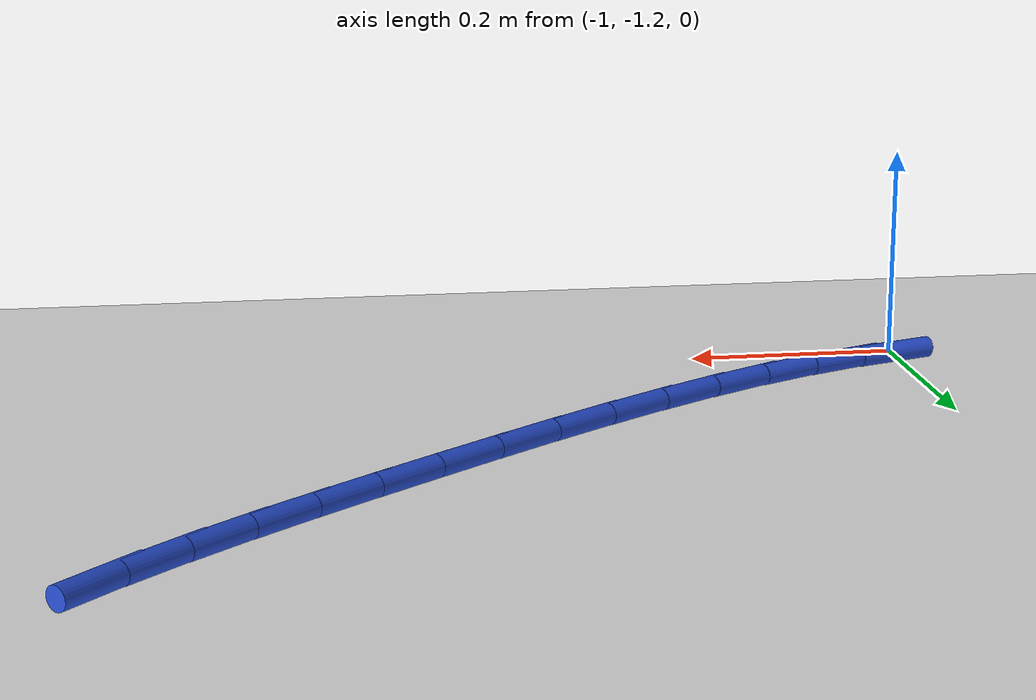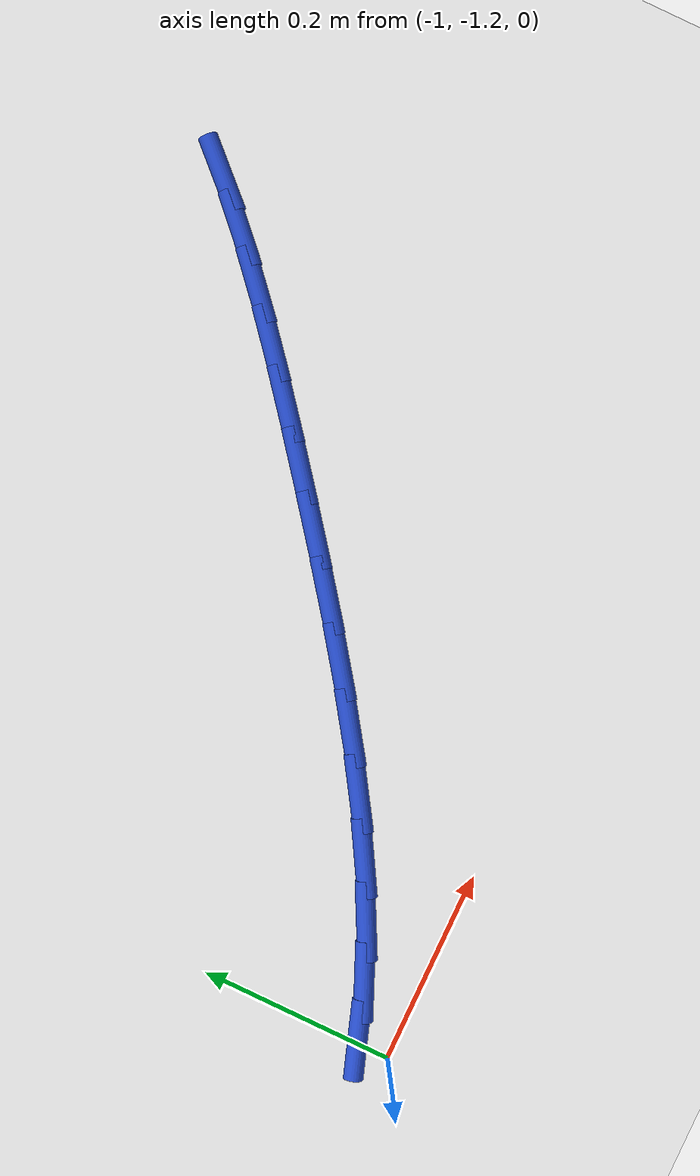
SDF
<sdf version="1.6">
 <world name="default">
  <model name="ground_plane">
   <static>1</static>
   <link name="link">
    <collision name="collision">
     <geometry><plane><normal>0 0 1</normal><size>100 100</size></plane></geometry>
     <surface><friction><ode><mu>100</mu><mu2>50</mu2></ode></friction></surface>
    </collision>
    <visual name="visual">
     <cast_shadows>0</cast_shadows>
     <geometry><plane><normal>0 0 1</normal><size>100 100</size></plane></geometry>
     <material>
      <script><uri>file://media/materials/scripts/gazebo.material</uri><name>Gazebo/WhiteGlow</name></script>
     </material>
    </visual>
   </link>
  </model>
  <model name="line">
   <link name="link_93">
    <pose>-0.9926756406002183 -1.1636423953339214 0.01 0 1.57 0.328688068036735</pose>
    <collision name="collision">
     <geometry><cylinder><radius>0.01</radius><length>0.08</length></cylinder></geometry>
    </collision>
    <visual name="visual">
     <material>
      <script><name>Gazebo/Blue</name><uri>file://media/materials/scripts/gazebo.material</uri></script>
     </material>
     <geometry><cylinder><radius>0.01</radius><length>0.08</length></cylinder></geometry>
    </visual>
   </link>
   <link name="link_94">
    <pose>-0.9381679822524729 -1.14505203120336 0.01 0 1.57 0.40941184323973084</pose>
    <collision name="collision">
     <geometry><cylinder><radius>0.01</radius><length>0.08</length></cylinder></geometry>
    </collision>
    <visual name="visual">
     <material>
      <script><name>Gazebo/Blue</name><uri>file://media/materials/scripts/gazebo.material</uri></script>
     </material>
     <geometry><cylinder><radius>0.01</radius><length>0.08</length></cylinder></geometry>
    </visual>
   </link>
   <link name="link_95">
    <pose>-0.8830698817209338 -1.121143195569204 0.01 0 1.57 0.47447050917708256</pose>
    <collision name="collision">
     <geometry><cylinder><radius>0.01</radius><length>0.08</length></cylinder></geometry>
    </collision>
    <visual name="visual">
     <material>
      <script><name>Gazebo/Blue</name><uri>file://media/materials/scripts/gazebo.material</uri></script>
     </material>
     <geometry><cylinder><radius>0.01</radius><length>0.08</length></cylinder></geometry>
    </visual>
   </link>
   <link name="link_96">
    <pose>-0.8276642211169561 -1.0926866949733112 0.01 0 1.57 0.5267138014611966</pose>
    <collision name="collision">
     <geometry><cylinder><radius>0.01</radius><length>0.08</length></cylinder></geometry>
    </collision>
    <visual name="visual">
     <material>
      <script><name>Gazebo/Blue</name><uri>file://media/materials/scripts/gazebo.material</uri></script>
     </material>
     <geometry><cylinder><radius>0.01</radius><length>0.08</length></cylinder></geometry>
    </visual>
   </link>
   <link name="link_97">
    <pose>-0.7722338825518966 -1.060453335957543 0.01 0 1.57 0.5684028689804026</pose>
    <collision name="collision">
     <geometry><cylinder><radius>0.01</radius><length>0.08</length></cylinder></geometry>
    </collision>
    <visual name="visual">
     <material>
      <script><name>Gazebo/Blue</name><uri>file://media/materials/scripts/gazebo.material</uri></script>
     </material>
     <geometry><cylinder><radius>0.01</radius><length>0.08</length></cylinder></geometry>
    </visual>
   </link>
   <link name="link_98">
    <pose>-0.7170617481371103 -1.0252139250637586 0.01 0 1.57 0.6012401482221396</pose>
    <collision name="collision">
     <geometry><cylinder><radius>0.01</radius><length>0.08</length></cylinder></geometry>
    </collision>
    <visual name="visual">
     <material>
      <script><name>Gazebo/Blue</name><uri>file://media/materials/scripts/gazebo.material</uri></script>
     </material>
     <geometry><cylinder><radius>0.01</radius><length>0.08</length></cylinder></geometry>
    </visual>
   </link>
   <link name="link_99">
    <pose>-0.6624306999839521 -0.9877392688338176 0.01 0 1.57 0.6264422781295648</pose>
    <collision name="collision">
     <geometry><cylinder><radius>0.01</radius><length>0.08</length></cylinder></geometry>
    </collision>
    <visual name="visual">
     <material>
      <script><name>Gazebo/Blue</name><uri>file://media/materials/scripts/gazebo.material</uri></script>
     </material>
     <geometry><cylinder><radius>0.01</radius><length>0.08</length></cylinder></geometry>
    </visual>
   </link>
   <link name="link_100">
    <pose>-0.6086236202037774 -0.9488001738095787 0.01 0 1.57 0.644805998543662</pose>
    <collision name="collision">
     <geometry><cylinder><radius>0.01</radius><length>0.08</length></cylinder></geometry>
    </collision>
    <visual name="visual">
     <material>
      <script><name>Gazebo/Blue</name><uri>file://media/materials/scripts/gazebo.material</uri></script>
     </material>
     <geometry><cylinder><radius>0.01</radius><length>0.08</length></cylinder></geometry>
    </visual>
   </link>
   <link name="link_101">
    <pose>-0.5559233909079425 -0.9091674465329036 0.01 0 1.57 0.6567470377286361</pose>
    <collision name="collision">
     <geometry><cylinder><radius>0.01</radius><length>0.08</length></cylinder></geometry>
    </collision>
    <visual name="visual">
     <material>
      <script><name>Gazebo/Blue</name><uri>file://media/materials/scripts/gazebo.material</uri></script>
     </material>
     <geometry><cylinder><radius>0.01</radius><length>0.08</length></cylinder></geometry>
    </visual>
   </link>
   <link name="link_102">
    <pose>-0.5046128942078026 -0.8696118935456507 0.01 0 1.57 0.6640131992782142</pose>
    <collision name="collision">
     <geometry><cylinder><radius>0.01</radius><length>0.08</length></cylinder></geometry>
    </collision>
    <visual name="visual">
     <material>
      <script><name>Gazebo/Blue</name><uri>file://media/materials/scripts/gazebo.material</uri></script>
     </material>
     <geometry><cylinder><radius>0.01</radius><length>0.08</length></cylinder></geometry>
    </visual>
   </link>
   <link name="link_103">
    <pose>-0.45495729122436124 -0.8307536261363064 0.01 0 1.57 0.6756559830364011</pose>
    <collision name="collision">
     <geometry><cylinder><radius>0.01</radius><length>0.08</length></cylinder></geometry>
    </collision>
    <visual name="visual">
     <material>
      <script><name>Gazebo/Blue</name><uri>file://media/materials/scripts/gazebo.material</uri></script>
     </material>
     <geometry><cylinder><radius>0.01</radius><length>0.08</length></cylinder></geometry>
    </visual>
   </link>
   <link name="link_104">
    <pose>-0.40712836078335374 -0.7924186538887321 0.01 0 1.57 0.6951074015684677</pose>
    <collision name="collision">
     <geometry><cylinder><radius>0.01</radius><length>0.08</length></cylinder></geometry>
    </collision>
    <visual name="visual">
     <material>
      <script><name>Gazebo/Blue</name><uri>file://media/materials/scripts/gazebo.material</uri></script>
     </material>
     <geometry><cylinder><radius>0.01</radius><length>0.08</length></cylinder></geometry>
    </visual>
   </link>
   <link name="link_105">
    <pose>-0.3612672326620296 -0.7541723538806006 0.01 0 1.57 0.722818816733007</pose>
    <collision name="collision">
     <geometry><cylinder><radius>0.01</radius><length>0.08</length></cylinder></geometry>
    </collision>
    <visual name="visual">
     <material>
      <script><name>Gazebo/Blue</name><uri>file://media/materials/scripts/gazebo.material</uri></script>
     </material>
     <geometry><cylinder><radius>0.01</radius><length>0.08</length></cylinder></geometry>
    </visual>
   </link>
   <link name="link_106">
    <pose>-0.3175150185694639 -0.7155799495419756 0.01 0 1.57 0.7590810178994325</pose>
    <collision name="collision">
     <geometry><cylinder><radius>0.01</radius><length>0.08</length></cylinder></geometry>
    </collision>
    <visual name="visual">
     <material>
      <script><name>Gazebo/Blue</name><uri>file://media/materials/scripts/gazebo.material</uri></script>
     </material>
     <geometry><cylinder><radius>0.01</radius><length>0.08</length></cylinder></geometry>
    </visual>
   </link>
   <link name="link_107">
    <pose>-0.27601283021473266 -0.6762066643029211 0.01 0 1.57 0.8039392244259844</pose>
    <collision name="collision">
     <geometry><cylinder><radius>0.01</radius><length>0.08</length></cylinder></geometry>
    </collision>
    <visual name="visual">
     <material>
      <script><name>Gazebo/Blue</name><uri>file://media/materials/scripts/gazebo.material</uri></script>
     </material>
     <geometry><cylinder><radius>0.01</radius><length>0.08</length></cylinder></geometry>
    </visual>
   </link>
  </model>
 </world>
</sdf>
